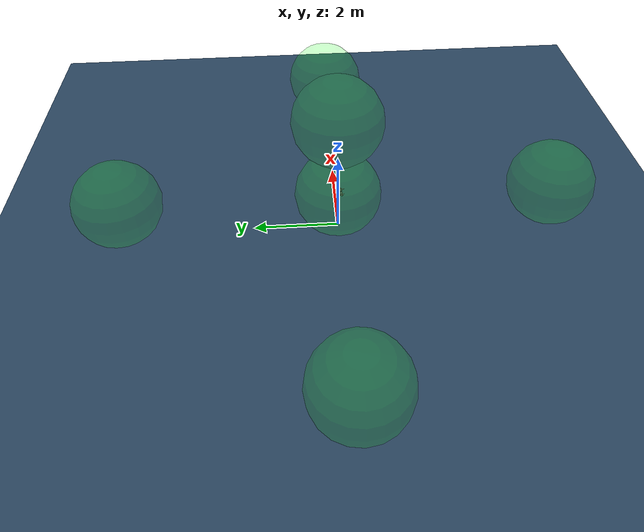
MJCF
<mujoco>

  <compiler angle="degree" meshdir="assets" texturedir="assets"/>

  <statistic center="0 0 0" extent="8"/>

  <visual>
    <headlight diffuse="0.6 0.6 0.6" ambient="0.3 0.3 0.3" specular="0 0 0"/>
    <rgba haze="0.15 0.25 0.35 1"/>
    <global azimuth="120" elevation="-40"/>
  </visual>

  <asset>
    <mesh file="drone.stl" scale="0.001 0.001 0.001"/>

    <texture type="skybox" builtin="gradient" rgb1="0.3 0.5 0.7" rgb2="0 0 0" width="512" height="3072"/>
    <texture type="2d" name="groundplane" builtin="checker" mark="edge" rgb1="0.2 0.3 0.4" rgb2="0.1 0.2 0.3"
      markrgb="0.8 0.8 0.8" width="300" height="300"/>
    <material name="groundplane" texture="groundplane" texuniform="true" texrepeat="1 1" reflectance="0.2"/>
  </asset>

  <default>
    <default class="waypoint">
      <geom contype="0" conaffinity="0" size="1" rgba="0 1 0 0.2"/>
    </default>

    <default class="visual">
      <geom contype="0" conaffinity="0"/>
    </default>
  </default>

  <worldbody>

    <light pos="0 0 1.5" dir="0 0 -1" directional="true"/>
    <geom name="floor" size="0 0 0.05" pos="0 0 0" type="plane" material="groundplane"/>

    <body name="drone" pos="0 0 1">
      <freejoint/>
      <geom type="box" size="0.15 0.15 0.05" rgba="0 0 0 0"/>
      <geom class="visual" type="mesh" mesh="drone" euler="0 0 90"/>
    </body>

    <body name="wp0" pos="0 0 1">
      <geom class="waypoint"/>
    </body>

    <body name="wp1" pos="5 0 1">
      <geom class="waypoint"/>
    </body>

    <body name="wp2" pos="0 5 1">
      <geom class="waypoint"/>
    </body>

    <body name="wp3" pos="0 0 3">
      <geom class="waypoint"/>
    </body>

    <body name="wp4" pos="0 -5 1">
      <geom class="waypoint"/>
    </body>

    <body name="wp5" pos="-5 0 1">
      <geom class="waypoint"/>
    </body>

  </worldbody>

</mujoco>
